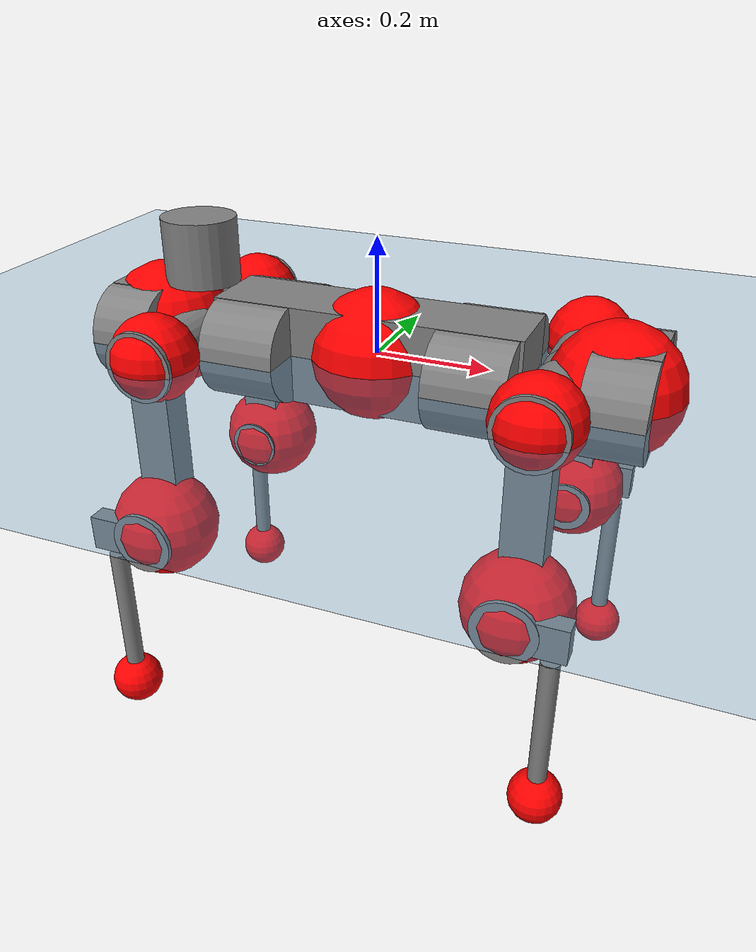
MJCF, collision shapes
<mujoco model="anymal_c">
  <compiler angle="radian" assetdir="assets" balanceinertia="true" inertiafromgeom="false"/>

  <option timestep="0.005" density="1.2" viscosity="2e-05"/>

  <size nkey="1"/>

  <visual>
    <quality shadowsize="8192"/>
    <map shadowclip="0.5"/>
  </visual>

  <default>
    <default class="/">
      <material specular="0" shininess="0.25"/>
      <geom contype="0" conaffinity="0" group="1" solref="-1000 -80"/>
      <site size="0.01 0.005 0.005" group="5"/>
      <general forcelimited="true" forcerange="-80 80" biastype="affine" gainprm="80" biasprm="0 -80 -2"/>
      <default class="anymal_c">
        <joint armature="0.01" damping="0.01" frictionloss="0.1"/>
        <default class="visual">
          <geom type="mesh" group="2"/>
          <default class="visual_zflip"/>
        </default>
        <default class="collision">
          <geom type="cylinder" group="3"/>
          <default class="foot">
            <geom size="0.03 0 0" type="sphere" condim="6" priority="1" friction="0.8 0.02 0.01" solimp="0.015 1 0.03"/>
          </default>
        </default>
      </default>
      <default class="reward_collision_sphere">
        <geom group="5" rgba="1 0 0 1"/>
      </default>
    </default>
  </default>

  <asset>
    <texture type="skybox" colorspace="auto" name="//unnamed_texture_0" builtin="gradient" rgb1="0.95 0.95 0.95" rgb2="0.95 0.95 0.95" width="100" height="600"/>
    <texture type="2d" colorspace="auto" name="texplane" builtin="checker" rgb1="0.345 0.575 0.748" rgb2="0.345 0.575 0.748" markrgb="1 1 1" width="512" height="512"/>
    <texture type="2d" colorspace="linear" name="base" file="base.png"/>
    <texture type="2d" colorspace="linear" name="top_shell" file="top_shell.png"/>
    <texture type="2d" colorspace="linear" name="bottom_shell" file="bottom_shell.png"/>
    <texture type="2d" colorspace="linear" name="remote" file="remote.png"/>
    <texture type="2d" colorspace="linear" name="hatch" file="hatch.png"/>
    <texture type="2d" colorspace="linear" name="handle" file="handle.png"/>
    <texture type="2d" colorspace="linear" name="face" file="face.png"/>
    <texture type="2d" colorspace="linear" name="battery" file="battery.png"/>
    <texture type="2d" colorspace="linear" name="lidar_cage" file="lidar_cage.png"/>
    <texture type="2d" colorspace="linear" name="depth_camera" file="depth_camera.png"/>
    <texture type="2d" colorspace="linear" name="wide_angle_camera" file="wide_angle_camera.png"/>
    <texture type="2d" colorspace="linear" name="lidar" file="lidar.png"/>
    <texture type="2d" colorspace="linear" name="drive" file="drive.png"/>
    <texture type="2d" colorspace="linear" name="hip_l" file="hip_l.png"/>
    <texture type="2d" colorspace="linear" name="shank_l" file="shank_l.png"/>
    <texture type="2d" colorspace="linear" name="foot" file="foot.png"/>
    <texture type="2d" colorspace="linear" name="thigh" file="thigh.png"/>
    <texture type="2d" colorspace="linear" name="shank_r" file="shank_r.png"/>
    <texture type="2d" colorspace="linear" name="hip_r" file="hip_r.png"/>
    <material name="MatPlane" class="/" texture="texplane" texuniform="true" texrepeat="2 2" specular="0.9" shininess="0.5"/>
    <material name="black_plastic" class="/" rgba="0.007 0.007 0.007 1"/>
    <material name="green" class="/" rgba="0.052 0.178 0.033 1"/>
    <material name="red" class="/" rgba="0.178 0.006 0.005 1"/>
    <material name="yellow" class="/" rgba="0.178 0.119 0.006 1"/>
    <material name="lwl" class="/" rgba="0.8 0.8 0.8 1"/>
    <material name="base" class="/" texture="base"/>
    <material name="top_shell" class="/" texture="top_shell"/>
    <material name="bottom_shell" class="/" texture="bottom_shell"/>
    <material name="hip_l" class="/" texture="hip_l"/>
    <material name="thigh" class="/" texture="thigh"/>
    <material name="shank_l" class="/" texture="shank_l"/>
    <material name="foot" class="/" texture="foot"/>
    <material name="hip_r" class="/" texture="hip_r"/>
    <material name="shank" class="/" texture="shank_r"/>
    <material name="hatch" class="/" texture="hatch"/>
    <material name="remote" class="/" texture="remote"/>
    <material name="handle" class="/" texture="handle"/>
    <material name="face" class="/" texture="face"/>
    <material name="depth_camera" class="/" texture="depth_camera"/>
    <material name="wide_angle_camera" class="/" texture="wide_angle_camera"/>
    <material name="battery" class="/" texture="battery"/>
    <material name="lidar_cage" class="/" texture="lidar_cage"/>
    <material name="lidar" class="/" texture="lidar"/>
    <material name="drive" class="/" texture="drive"/>
    <mesh name="base_0" class="/" file="base_0.obj"/>
    <mesh name="base_1" class="/" file="base_1.obj"/>
    <mesh name="base_2" class="/" file="base_2.obj"/>
    <mesh name="base_3" class="/" file="base_3.obj"/>
    <mesh name="base_4" class="/" file="base_4.obj"/>
    <mesh name="base_5" class="/" file="base_5.obj"/>
    <mesh name="top_shell" class="/" file="top_shell.obj"/>
    <mesh name="bottom_shell" class="/" file="bottom_shell.obj"/>
    <mesh name="remote" class="/" file="remote.obj"/>
    <mesh name="handle" class="/" file="handle.obj"/>
    <mesh name="face" class="/" file="face.obj"/>
    <mesh name="wide_angle_camera" class="/" file="wide_angle_camera.obj"/>
    <mesh name="depth_camera" class="/" file="depth_camera.obj"/>
    <mesh name="battery" class="/" file="battery.obj"/>
    <mesh name="lidar_cage" class="/" file="lidar_cage.obj"/>
    <mesh name="lidar" class="/" file="lidar.obj"/>
    <mesh name="drive" class="/" file="drive.obj"/>
    <mesh name="hip_l" class="/" file="hip_l.obj"/>
    <mesh name="thigh" class="/" file="thigh.obj"/>
    <mesh name="shank_l" class="/" file="shank_l.obj"/>
    <mesh name="foot" class="/" file="foot.obj"/>
    <mesh name="hip_r" class="/" file="hip_r.obj"/>
    <mesh name="hatch" class="/" file="hatch.obj"/>
    <mesh name="shank_r" class="/" file="shank_r.obj"/>
  </asset>

  <worldbody>
    <geom name="floor" class="/" size="100 100 0.125" type="plane" group="0" material="MatPlane"/>
    <light name="toplight_shadow" class="/" pos="0 0 5" dir="0.0990148 0.0990148 -0.990148" type="directional" ambient="0.04 0.04 0.04" diffuse="0.55 0.55 0.55" specular="0.12 0.12 0.12"/>
    <light name="toplight_fill" class="/" pos="0 0 5" dir="0.0990148 0.0990148 -0.990148" type="directional" castshadow="false" ambient="0.04 0.04 0.04" diffuse="0.3 0.3 0.3" specular="0.08 0.08 0.08"/>
    <body name="trunk" childclass="anymal_c" pos="-0.00219718 -0.000838504 -0.000901871" quat="1 -0.000734428 0.00032084 0.00037288">
      <inertial pos="0.000909494 0.000907946 0.0539323" quat="0.498572 0.509491 0.4913 0.500468" mass="15.651" diaginertia="0.405158 0.237497 0.330536"/>
      <joint name="//unnamed_joint_0" type="free" armature="0" damping="0" frictionloss="0"/>
      <geom name="//unnamed_geom_1" class="visual" material="green" mesh="base_0"/>
      <geom name="//unnamed_geom_2" class="visual" material="yellow" mesh="base_1"/>
      <geom name="//unnamed_geom_3" class="visual" material="red" mesh="base_2"/>
      <geom name="//unnamed_geom_4" class="visual" material="black_plastic" mesh="base_3"/>
      <geom name="//unnamed_geom_5" class="visual" material="lwl" mesh="base_4"/>
      <geom name="//unnamed_geom_6" class="visual" material="base" mesh="base_5"/>
      <geom name="trunk_1" class="collision" size="0.272528 0.0657826 0.0845777" type="box"/>
      <geom name="trunk_2" class="collision" size="0.0845777 0.068132" pos="0.19778 0.0578011 0" quat="0.707107 0 0.707107 0"/>
      <geom name="trunk_3" class="collision" size="0.0845777 0.068132" pos="-0.19778 0.0578011 0" quat="0.707107 0 0.707107 0"/>
      <geom name="trunk_4" class="collision" size="0.0845777 0.068132" pos="0.19778 -0.0578011 0" quat="0.707107 0 0.707107 0"/>
      <geom name="trunk_5" class="collision" size="0.0845777 0.068132" pos="-0.19778 -0.0578011 0" quat="0.707107 0 0.707107 0"/>
      <geom name="//unnamed_geom_12" class="visual" material="top_shell" mesh="top_shell"/>
      <geom name="//unnamed_geom_13" class="visual" material="bottom_shell" mesh="bottom_shell"/>
      <geom name="//unnamed_geom_14" class="visual" material="remote" mesh="remote"/>
      <geom name="//unnamed_geom_15" class="visual" material="handle" mesh="handle"/>
      <geom name="//unnamed_geom_16" class="visual" pos="0.376919 0 0" quat="1 0 0 0" material="face" mesh="face"/>
      <geom name="trunk_6" class="collision" size="0.0516864 0.0657826 0.0845777" pos="0.426932 0 0" type="box"/>
      <geom name="//unnamed_geom_18" class="collision" size="0.0845777 0.0516864" pos="0.426932 0.0578011 0" quat="0.707107 0 0.707107 0"/>
      <geom name="//unnamed_geom_19" class="collision" size="0.0845777 0.0516864" pos="0.426932 -0.0578011 0" quat="0.707107 0 0.707107 0"/>
      <geom name="//unnamed_geom_20" class="visual" pos="0.419801 0 -0.0329873" quat="0.965926 0 0.258819 0" material="depth_camera" mesh="depth_camera"/>
      <geom name="//unnamed_geom_21" class="visual" pos="0.466489 0 0.0162303" material="wide_angle_camera" mesh="wide_angle_camera"/>
      <geom name="//unnamed_geom_22" class="visual_zflip" pos="-0.376919 0 0" quat="0 0 0 1" material="face" mesh="face"/>
      <geom name="trunk_7" class="collision" size="0.0516864 0.0657826 0.0845777" pos="-0.426932 0 0" quat="0 0 0 1" type="box"/>
      <geom name="//unnamed_geom_24" class="collision" size="0.0845777 0.0516864" pos="-0.426932 -0.0578011 0" quat="0 -0.707107 0 0.707107"/>
      <geom name="//unnamed_geom_25" class="collision" size="0.0845777 0.0516864" pos="-0.426932 0.0578011 0" quat="0 -0.707107 0 0.707107"/>
      <geom name="//unnamed_geom_26" class="visual" pos="-0.419801 0 -0.0329873" quat="0 -0.258819 0 0.965926" material="depth_camera" mesh="depth_camera"/>
      <geom name="//unnamed_geom_27" class="visual_zflip" pos="-0.466489 0 0.0162303" quat="0 0 0 1" material="wide_angle_camera" mesh="wide_angle_camera"/>
      <geom name="//unnamed_geom_28" class="visual" material="battery" mesh="battery"/>
      <geom name="//unnamed_geom_29" class="visual" pos="0 0.0620455 0.0301668" quat="0.683013 -0.183013 0.183013 0.683013" material="depth_camera" mesh="depth_camera"/>
      <geom name="//unnamed_geom_30" class="visual" pos="0 -0.0620455 0.0301668" quat="0.683013 0.183013 0.183013 -0.683013" material="depth_camera" mesh="depth_camera"/>
      <geom name="//unnamed_geom_31" class="visual" pos="-0.330998 0 0.0796881" quat="1 0 0 0" material="lidar_cage" mesh="lidar_cage"/>
      <geom name="trunk_8" class="collision" size="0.0657826 0.0563851" pos="-0.330998 0 0.14474"/>
      <geom name="//unnamed_geom_33" class="visual" pos="-0.330998 -3.2846e-05 0.154172" quat="0.707107 0 0 -0.707107" material="lidar" mesh="lidar"/>
      <geom name="//unnamed_geom_34" class="visual" pos="0.272709 0.0859677 -4.45849e-09" quat="0.258819 0.965926 0 0" material="drive" mesh="drive"/>
      <geom name="//unnamed_geom_35" class="visual" pos="0.272709 -0.0859677 4.45849e-09" quat="0.258819 -0.965926 0 0" material="drive" mesh="drive"/>
      <geom name="//unnamed_geom_36" class="visual" pos="-0.272709 0.0859677 4.45849e-09" quat="0 0 0.965926 -0.258819" material="drive" mesh="drive"/>
      <geom name="//unnamed_geom_37" class="visual" pos="-0.272709 -0.0859677 -4.45849e-09" quat="0 0 -0.965926 -0.258819" material="drive" mesh="drive"/>
      <geom name="//unnamed_geom_38" class="visual" pos="0.105483 0 0.079146" quat="1 0 0 0" material="hatch" mesh="hatch"/>
      <geom name="//unnamed_geom_39" class="reward_collision_sphere" size="0.11277"/>
      <geom name="//unnamed_geom_40" class="reward_collision_sphere" size="0.11277" pos="0.4092 0 0"/>
      <geom name="//unnamed_geom_41" class="reward_collision_sphere" size="0.11277" pos="-0.4092 0 0"/>
      <site name="imu" pos="0.232544 -0.00549718 0.0515016" size="0.00939752"/>
      <camera name="track" pos="0 -1.65146 0" quat="0.707107 0.707107 0 0" mode="trackcom"/>
      <camera name="ego_camera" pos="0.4092 0 -0.0433677" quat="-0.5 -0.5 0.5 0.5"/>
      <body name="LF_HIP" pos="0.273635 0.0869689 -0.00175874" quat="0.25804 0.966134 0.000210119 0.00116775">
        <inertial pos="0.0506474 -0.0122806 -0.00797019" quat="-0.126393 0.717266 -0.129999 0.672797" mass="2.38336" diaginertia="0.00376134 0.0019443 0.00515968"/>
        <joint name="LF_HAA" pos="0 0 0" axis="0.999947 0.00244939 -0.00995849" range="-0.664874 0.496342" armature="0.0105857" damping="0.00812788" frictionloss="0.0983112"/>
        <geom name="//unnamed_geom_42" class="visual" pos="0 -0.000262273 4.30781e-05" quat="0.258819 -0.965926 0 0" material="hip_l" mesh="hip_l"/>
        <geom name="//unnamed_geom_43" class="visual" pos="0.0544691 -0.064992 -0.0394349" quat="0.183013 -0.683013 0.683013 0.183013" material="drive" mesh="drive"/>
        <geom name="//unnamed_geom_44" class="collision" size="0.0469876 0.0657826" pos="0.0544691 -0.00987556 -0.00748634" quat="-0.353553 -0.612372 0.612372 -0.353553"/>
        <body name="LF_THIGH" pos="0.0549122 -0.0602057 -0.0454724" quat="0.182997 -0.682992 0.683033 0.183032">
          <inertial pos="0.0276775 -0.00263784 -0.268795" quat="0.99344 -0.00370776 -0.0770613 0.0844084" mass="2.59475" diaginertia="0.0186652 0.0113602 0.00621677"/>
          <joint name="LF_HFE" pos="0 0 0" axis="0.999997 -0.00085988 0.00207794" stiffness="0.00171511" range="-3.1393 3.19114" armature="0.00896657" damping="0" frictionloss="0.0936108"/>
          <geom name="//unnamed_geom_45" class="visual" pos="0.0016634 2.62113e-06 0" quat="0.707107 0 0 -0.707107" material="thigh" mesh="thigh"/>
          <geom name="//unnamed_geom_46" class="collision" size="0.0610839 0.0375901" pos="0.0363734 0 0" quat="0.5 0.5 -0.5 -0.5"/>
          <geom name="//unnamed_geom_47" class="collision" size="0.0352407 0.0281926 0.1328" pos="0.02728 0 -0.153211" quat="0.707107 0 0 -0.707107" type="box"/>
          <geom name="//unnamed_geom_48" class="visual" pos="0.0912062 0 -0.308995" quat="1 0 0 0" material="drive" mesh="drive"/>
          <geom name="//unnamed_geom_49" class="collision" size="0.0469876 0.0657826" pos="0.0275528 0 -0.308995" quat="0.707107 0 0.707107 0"/>
          <geom name="//unnamed_geom_50" class="reward_collision_sphere" size="0.0751801" pos="0.0227334 0 0"/>
          <body name="LF_SHANK" pos="0.0934695 0.0021161 -0.306946" quat="1 5.09639e-05 2.17631e-05 2.52596e-05">
            <inertial pos="0.00568942 -0.0517624 -0.0854857" quat="0.992914 -0.116254 -0.00128462 -0.0246014" mass="0.507854" diaginertia="0.00651964 0.00361283 0.00168341"/>
            <joint name="LF_KFE" pos="0 0 0" axis="1 -2.96646e-05 0.000306273" range="-3.10191 3.08535" armature="0.00921459" damping="0.0104983" frictionloss="0.0970429"/>
            <geom name="//unnamed_geom_51" class="visual" pos="0.000542399 0.0028921 0" quat="0.707107 0 0 -0.707107" material="shank_l" mesh="shank_l"/>
            <geom name="LF_kfe_act" class="collision" size="0.0563851 0.018795" pos="0.0181867 0 0" quat="0.5 0.5 -0.5 -0.5"/>
            <geom name="//unnamed_geom_53" class="collision" size="0.0540348 0.0317166 0.0178553" pos="0.0181867 -0.0474786 0" quat="0.5 0.5 -0.5 -0.5" type="box"/>
            <geom name="//unnamed_geom_54" class="visual" pos="0.0118667 -0.0716909 -0.366424" quat="0.382683 0 0 -0.92388" material="foot" mesh="foot"/>
            <geom name="LF_calf" class="collision" size="0.0164457 0.132742" pos="0.0118668 -0.0726229 -0.183212" quat="0.707107 0 0 -0.707107"/>
            <geom name="LF_foot" class="foot" size="0.0268138" pos="0.0118668 -0.0726229 -0.34203" quat="0.707107 0 0 -0.707107"/>
            <geom name="//unnamed_geom_57" class="reward_collision_sphere" size="0.0939752" pos="-0.0454667 0 0"/>
            <geom name="//unnamed_geom_58" class="reward_collision_sphere" size="0.0469876" pos="0.0118668 -0.0726229 -0.34203"/>
            <site name="LF_foot" class="foot" pos="0.0118668 -0.0726229 -0.34203" quat="0.707107 0 0 -0.707107" size="0.00939752"/>
          </body>
        </body>
      </body>
      <body name="RF_HIP" pos="0.274323 -0.0855306 0.00291611" quat="0.258812 -0.965928 -1.17932e-06 -3.1209e-07">
        <inertial pos="0.0525686 0.0112011 -0.00864742" quat="0.125068 0.686257 0.129606 0.704707" mass="2.39371" diaginertia="0.00371735 0.00195672 0.00502891"/>
        <joint name="RF_HAA" pos="0 0 0" axis="0.999997 0.00029155 0.00262002" range="-0.447723 0.727973" armature="0.00938594" damping="0.00782613" frictionloss="0.0918698"/>
        <geom name="//unnamed_geom_59" class="visual" pos="0 0.000262271 4.3078e-05" quat="0.258819 0.965926 0 0" material="hip_r" mesh="hip_r"/>
        <geom name="//unnamed_geom_60" class="visual" pos="0.0544691 0.064992 -0.0394349" quat="0.183013 0.683013 0.683013 -0.183013" material="drive" mesh="drive"/>
        <geom name="//unnamed_geom_61" class="collision" size="0.0469876 0.0657826" pos="0.0544691 0.00987556 -0.00748634" quat="-0.353553 0.612372 0.612372 0.353553"/>
        <body name="RF_THIGH" pos="0.0555656 0.0618335 -0.0484158" quat="0.182909 0.683069 0.683061 -0.182727">
          <inertial pos="0.0280822 8.13454e-05 -0.268842" quat="0.993781 -0.00134877 -0.0801614 0.0772752" mass="2.61338" diaginertia="0.0191906 0.0118789 0.00648789"/>
          <joint name="RF_HFE" pos="0 0 0" axis="1 0.000163804 0.00028146" stiffness="0.00592216" range="-3.19685 3.18963" armature="0.00829823" damping="0.00974033" frictionloss="0.0890105"/>
          <geom name="//unnamed_geom_62" class="visual" pos="0.0016634 2.62113e-06 0" quat="0.707107 0 0 -0.707107" material="thigh" mesh="thigh"/>
          <geom name="//unnamed_geom_63" class="collision" size="0.0610839 0.0375901" pos="0.0363734 0 0" quat="0.5 0.5 0.5 0.5"/>
          <geom name="//unnamed_geom_64" class="collision" size="0.0352407 0.0281926 0.1328" pos="0.02728 0 -0.153211" quat="0.707107 0 0 0.707107" type="box"/>
          <geom name="//unnamed_geom_65" class="visual" pos="0.0912062 0 -0.308995" quat="1 0 0 0" material="drive" mesh="drive"/>
          <geom name="//unnamed_geom_66" class="collision" size="0.0469876 0.0657826" pos="0.0275528 0 -0.308995" quat="0.707107 0 0.707107 0"/>
          <geom name="//unnamed_geom_67" class="reward_collision_sphere" size="0.0751801" pos="0.0227334 0 0"/>
          <body name="RF_SHANK" pos="0.09216 -4.98723e-07 -0.309908" quat="1 -9.2848e-05 -1.39984e-05 -1.40638e-05">
            <inertial pos="0.00408618 0.0511697 -0.0849353" quat="0.992775 0.116415 0.00366299 0.0288386" mass="0.459178" diaginertia="0.00614227 0.00354858 0.0015709"/>
            <joint name="RF_KFE" pos="0 0 0" axis="1 -0.00089595 -0.000440966" range="-3.13593 3.1143" armature="0.0105444" damping="0.00939949" frictionloss="0.0937979"/>
            <geom name="//unnamed_geom_68" class="visual" pos="0.000542396 -0.00289209 0" quat="0.707107 0 0 0.707107" material="shank" mesh="shank_r"/>
            <geom name="RF_kfe_act" class="collision" size="0.0563851 0.018795" pos="0.0181867 0 0" quat="0.5 0.5 0.5 0.5"/>
            <geom name="//unnamed_geom_70" class="collision" size="0.0540348 0.0317166 0.0178553" pos="0.0181867 0.0474786 0" quat="0.5 0.5 0.5 0.5" type="box"/>
            <geom name="//unnamed_geom_71" class="visual" pos="0.0118669 0.0716909 -0.366424" quat="0.382683 0 0 0.92388" material="foot" mesh="foot"/>
            <geom name="RF_calf" class="collision" size="0.0164457 0.132742" pos="0.0118668 0.0726229 -0.183212" quat="0.707107 0 0 0.707107"/>
            <geom name="RF_foot" class="foot" size="0.0283027" pos="0.0118668 0.0726229 -0.34203" quat="0.707107 0 0 0.707107"/>
            <geom name="//unnamed_geom_74" class="reward_collision_sphere" size="0.0939752" pos="-0.0454667 0 0"/>
            <geom name="//unnamed_geom_75" class="reward_collision_sphere" size="0.0469876" pos="0.0118668 0.0726229 -0.34203"/>
            <site name="RF_foot" class="foot" pos="0.0118668 0.0726229 -0.34203" quat="0.707107 0 0 0.707107" size="0.00939752"/>
          </body>
        </body>
      </body>
      <body name="LH_HIP" pos="-0.271467 0.0859124 -0.00171223" quat="-9.55925e-05 -0.000151193 0.965925 -0.258824">
        <inertial pos="0.0518206 0.0126065 -0.011811" quat="0.135225 0.681411 0.125678 0.708236" mass="2.40558" diaginertia="0.00379555 0.00185661 0.00496551"/>
        <joint name="LH_HAA" pos="0 0 0" axis="0.999999 0.00118318 -0.000908028" range="-0.441417 0.777542" armature="0.0094232" damping="0.000949284" frictionloss="0.106881"/>
        <geom name="//unnamed_geom_76" class="visual" pos="0 0.000262271 4.3078e-05" quat="-0.258819 -0.965926 0 0" material="hip_r" mesh="hip_r"/>
        <geom name="//unnamed_geom_77" class="visual" pos="0.0544691 0.064992 -0.0394349" quat="0.183013 0.683013 0.683013 -0.183013" material="drive" mesh="drive"/>
        <geom name="//unnamed_geom_78" class="collision" size="0.0469876 0.0657826" pos="0.0544691 0.00987556 -0.00748634" quat="-0.353553 0.612372 0.612372 0.353553"/>
        <body name="LH_THIGH" pos="0.0544499 0.0607589 -0.0477405" quat="0.183018 0.682985 0.683044 -0.182994">
          <inertial pos="0.0253671 -0.000888394 -0.268691" quat="0.993313 -0.00834707 -0.0680801 0.0928678" mass="2.58713" diaginertia="0.0182064 0.0115776 0.00606601"/>
          <joint name="LH_HFE" pos="0 0 0" axis="0.999873 -0.00220912 0.0158014" range="-3.19663 3.16174" armature="0.00930773" damping="0.00534858" frictionloss="0.0921629"/>
          <geom name="//unnamed_geom_79" class="visual" pos="0.0016634 2.62113e-06 0" quat="0.707107 0 0 -0.707107" material="thigh" mesh="thigh"/>
          <geom name="//unnamed_geom_80" class="collision" size="0.0610839 0.0375901" pos="0.0363734 0 0" quat="0.5 0.5 -0.5 -0.5"/>
          <geom name="//unnamed_geom_81" class="collision" size="0.0352407 0.0281926 0.1328" pos="0.02728 0 -0.153211" quat="0.707107 0 0 -0.707107" type="box"/>
          <geom name="//unnamed_geom_82" class="visual" pos="0.0912062 0 -0.308995" quat="1 0 0 0" material="drive" mesh="drive"/>
          <geom name="//unnamed_geom_83" class="collision" size="0.0469876 0.0657826" pos="0.0275528 0 -0.308995" quat="0.707107 0 0.707107 0"/>
          <geom name="//unnamed_geom_84" class="reward_collision_sphere" size="0.0751801" pos="0.0227334 0 0"/>
          <body name="LH_SHANK" pos="0.0901191 -0.000713787 -0.311303" quat="1 6.14611e-05 -3.76947e-05 -4.23297e-05">
            <inertial pos="0.00630602 0.0488308 -0.0855605" quat="0.992527 0.116673 -0.0102365 0.0342511" mass="0.472039" diaginertia="0.00631648 0.00353427 0.00167778"/>
            <joint name="LH_KFE" pos="0 0 0" axis="0.999966 0.00625644 -0.00543237" range="-3.15656 3.13915" armature="0.00918841" damping="0.0033121" frictionloss="0.100792"/>
            <geom name="//unnamed_geom_85" class="visual" pos="0.000542396 -0.00289209 0" quat="-0.707107 0 0 -0.707107" material="shank" mesh="shank_r"/>
            <geom name="LH_kfe_act" class="collision" size="0.0563851 0.018795" pos="0.0181867 0 0" quat="0.5 0.5 -0.5 -0.5"/>
            <geom name="//unnamed_geom_87" class="collision" size="0.0540348 0.0317166 0.0178553" pos="0.0181867 0.0474786 0" quat="0.5 0.5 -0.5 -0.5" type="box"/>
            <geom name="//unnamed_geom_88" class="visual" pos="0.0118669 0.0716909 -0.366424" quat="-0.382683 0 0 -0.92388" material="foot" mesh="foot"/>
            <geom name="LH_calf" class="collision" size="0.0164457 0.132742" pos="0.0118668 0.0726229 -0.183212" quat="0.707107 0 0 -0.707107"/>
            <geom name="LH_foot" class="foot" size="0.0320842" pos="0.0118668 0.0726229 -0.34203" quat="0.707107 0 0 -0.707107"/>
            <geom name="//unnamed_geom_91" class="reward_collision_sphere" size="0.0939752" pos="-0.0454667 0 0"/>
            <geom name="//unnamed_geom_92" class="reward_collision_sphere" size="0.0469876" pos="0.0118668 0.0726229 -0.34203"/>
            <site name="LH_foot" class="foot" pos="0.0118668 0.0726229 -0.34203" quat="0.707107 0 0 -0.707107" size="0.00939752"/>
          </body>
        </body>
      </body>
      <body name="RH_HIP" pos="-0.272717 -0.0852966 0.00131875" quat="9.60014e-05 -0.000116929 -0.965863 -0.259053">
        <inertial pos="0.0520081 -0.0100072 -0.011462" quat="-0.127978 0.709407 -0.135559 0.679696" mass="2.24292" diaginertia="0.00356732 0.001851 0.00477904"/>
        <joint name="RH_HAA" pos="0 0 0" axis="0.999992 -0.000610612 -0.00400312" range="-0.729313 0.441694" armature="0.0088302" damping="0" frictionloss="0.0926865"/>
        <geom name="//unnamed_geom_93" class="visual" pos="0 -0.000262273 4.30781e-05" quat="-0.258819 0.965926 0 0" material="hip_l" mesh="hip_l"/>
        <geom name="//unnamed_geom_94" class="visual" pos="0.0544691 -0.064992 -0.0394349" quat="-0.183013 0.683013 -0.683013 -0.183013" material="drive" mesh="drive"/>
        <geom name="//unnamed_geom_95" class="collision" size="0.0469876 0.0657826" pos="0.0544691 -0.00987556 -0.00748634" quat="0.353553 0.612372 -0.612372 0.353553"/>
        <body name="RH_THIGH" pos="0.0532497 -0.0590471 -0.0426605" quat="-0.183332 0.682862 -0.683019 -0.183231">
          <inertial pos="0.0267177 0.00211189 -0.26604" quat="0.993242 -0.00490523 -0.0801494 0.0838009" mass="2.38503" diaginertia="0.0183124 0.0111407 0.00625905"/>
          <joint name="RH_HFE" pos="0 0 0" axis="1 -0.000457281 -0.00054013" stiffness="0.00832209" range="-3.19503 3.19795" armature="0.00974691" damping="0.0081135" frictionloss="0.081674"/>
          <geom name="//unnamed_geom_96" class="visual" pos="0.0016634 2.62113e-06 0" quat="0.707107 0 0 -0.707107" material="thigh" mesh="thigh"/>
          <geom name="//unnamed_geom_97" class="collision" size="0.0610839 0.0375901" pos="0.0363734 0 0" quat="0.5 0.5 0.5 0.5"/>
          <geom name="//unnamed_geom_98" class="collision" size="0.0352407 0.0281926 0.1328" pos="0.02728 0 -0.153211" quat="0.707107 0 0 0.707107" type="box"/>
          <geom name="//unnamed_geom_99" class="visual" pos="0.0912062 0 -0.308995" quat="1 0 0 0" material="drive" mesh="drive"/>
          <geom name="//unnamed_geom_100" class="collision" size="0.0469876 0.0657826" pos="0.0275528 0 -0.308995" quat="0.707107 0 0.707107 0"/>
          <geom name="//unnamed_geom_101" class="reward_collision_sphere" size="0.0751801" pos="0.0227334 0 0"/>
          <body name="RH_SHANK" pos="0.0932964 0.00102465 -0.307154" quat="1 -0.000454016 0.000534477 -0.000158895">
            <inertial pos="0.00476078 -0.0505967 -0.0871295" quat="0.992452 -0.120045 0.000661097 -0.0250553" mass="0.462158" diaginertia="0.00624606 0.0034652 0.00163956"/>
            <joint name="RH_KFE" pos="0 0 0" axis="0.999998 0.0014502 0.00117703" range="-3.12863 3.16311" armature="0.00913799" damping="0" frictionloss="0.0921079"/>
            <geom name="//unnamed_geom_102" class="visual" pos="0.000542399 0.0028921 0" quat="0.707107 0 0 -0.707107" material="shank_l" mesh="shank_l"/>
            <geom name="RH_kfe_act" class="collision" size="0.0563851 0.018795" pos="0.0181867 0 0" quat="0.5 0.5 0.5 0.5"/>
            <geom name="//unnamed_geom_104" class="collision" size="0.0540348 0.0317166 0.0178553" pos="0.0181867 -0.0474786 0" quat="0.5 0.5 0.5 0.5" type="box"/>
            <geom name="//unnamed_geom_105" class="visual" pos="0.0118667 -0.0716909 -0.366424" quat="0.382683 0 0 -0.92388" material="foot" mesh="foot"/>
            <geom name="RH_calf" class="collision" size="0.0164457 0.132742" pos="0.0118668 -0.0726229 -0.183212" quat="0.707107 0 0 0.707107"/>
            <geom name="RH_foot" class="foot" size="0.0285231" pos="0.0118668 -0.0726229 -0.34203" quat="0.707107 0 0 0.707107"/>
            <geom name="//unnamed_geom_108" class="reward_collision_sphere" size="0.0939752" pos="-0.0454667 0 0"/>
            <geom name="//unnamed_geom_109" class="reward_collision_sphere" size="0.0469876" pos="0.0118668 -0.0726229 -0.34203"/>
            <site name="RH_foot" class="foot" pos="0.0118668 -0.0726229 -0.34203" quat="0.707107 0 0 0.707107" size="0.00939752"/>
          </body>
        </body>
      </body>
    </body>
  </worldbody>

  <contact>
    <pair class="/" geom1="floor" geom2="LF_foot" name="//unnamed_contact_0"/>
    <pair class="/" geom1="floor" geom2="RF_foot" name="//unnamed_contact_1"/>
    <pair class="/" geom1="floor" geom2="LH_foot" name="//unnamed_contact_2"/>
    <pair class="/" geom1="floor" geom2="RH_foot" name="//unnamed_contact_3"/>
  </contact>

  <actuator>
    <general name="LF_HAA" class="/" joint="LF_HAA" forcerange="-72.5715 72.5715" gainprm="73.0022" biasprm="0 -73.0022 -1.98647"/>
    <general name="LF_HFE" class="/" joint="LF_HFE" forcerange="-82.7083 82.7083" gainprm="73.0022" biasprm="0 -73.0022 -1.98647"/>
    <general name="LF_KFE" class="/" joint="LF_KFE" forcerange="-67.3064 67.3064" gainprm="73.0022" biasprm="0 -73.0022 -1.98647"/>
    <general name="RF_HAA" class="/" joint="RF_HAA" forcerange="-73.9268 73.9268" gainprm="73.0022" biasprm="0 -73.0022 -1.98647"/>
    <general name="RF_HFE" class="/" joint="RF_HFE" forcerange="-82.1135 82.1135" gainprm="73.0022" biasprm="0 -73.0022 -1.98647"/>
    <general name="RF_KFE" class="/" joint="RF_KFE" forcerange="-81.6995 81.6995" gainprm="73.0022" biasprm="0 -73.0022 -1.98647"/>
    <general name="LH_HAA" class="/" joint="LH_HAA" forcerange="-83.1026 83.1026" gainprm="73.0022" biasprm="0 -73.0022 -1.98647"/>
    <general name="LH_HFE" class="/" joint="LH_HFE" forcerange="-78.8072 78.8072" gainprm="73.0022" biasprm="0 -73.0022 -1.98647"/>
    <general name="LH_KFE" class="/" joint="LH_KFE" forcerange="-73.4162 73.4162" gainprm="73.0022" biasprm="0 -73.0022 -1.98647"/>
    <general name="RH_HAA" class="/" joint="RH_HAA" forcerange="-76.3026 76.3026" gainprm="73.0022" biasprm="0 -73.0022 -1.98647"/>
    <general name="RH_HFE" class="/" joint="RH_HFE" forcerange="-68.1645 68.1645" gainprm="73.0022" biasprm="0 -73.0022 -1.98647"/>
    <general name="RH_KFE" class="/" joint="RH_KFE" forcerange="-68.1882 68.1882" gainprm="73.0022" biasprm="0 -73.0022 -1.98647"/>
  </actuator>

  <sensor>
    <gyro site="imu" name="imu_angular_velocity"/>
    <velocimeter site="imu" name="imu_linear_velocity"/>
    <framelinvel objtype="site" objname="LF_foot" name="LF_foot_global_linear_velocity"/>
    <framelinvel objtype="site" objname="RF_foot" name="RF_foot_global_linear_velocity"/>
    <framelinvel objtype="site" objname="LH_foot" name="LH_foot_global_linear_velocity"/>
    <framelinvel objtype="site" objname="RH_foot" name="RH_foot_global_linear_velocity"/>
  </sensor>

  <keyframe>
    <key name="home" qpos="0 0 0.55 1 0 0 0 0 0.4 -0.8 0 -0.4 0.8 0 -0.4 0.8 0 0.4 -0.8"/>
  </keyframe>
</mujoco>
